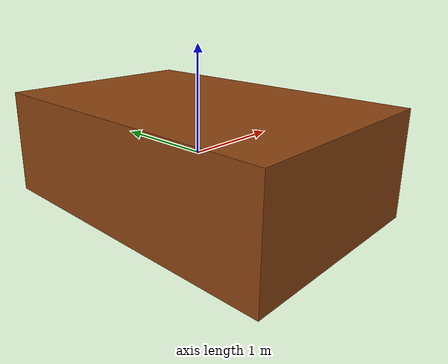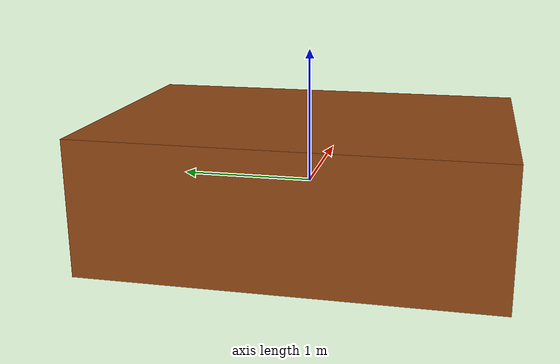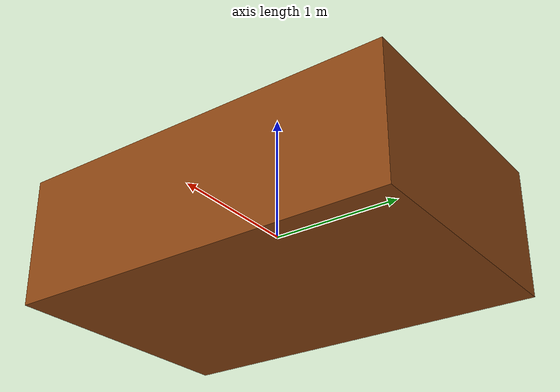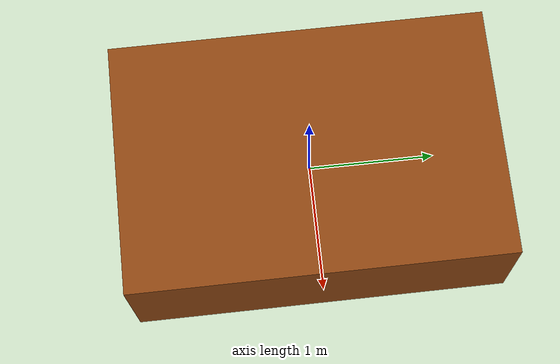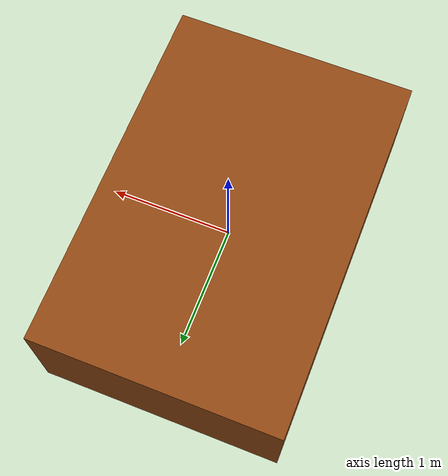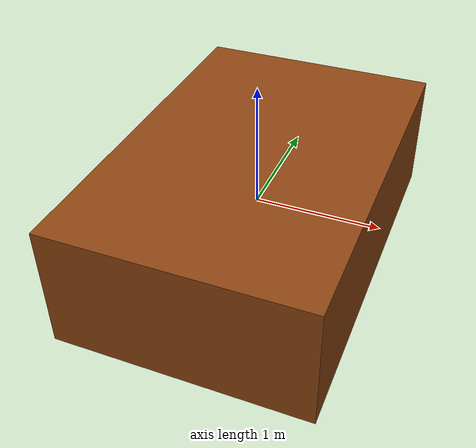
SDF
<?xml version="1.0" ?>
<!--
  Big Box Obstacle Model
  ==================
  Generic static parallelepiped obstacle.
  Default size: 2.0 × 3.0 × 1.0 m
-->
<sdf version="1.8">
  <model name="big_box_obstacle">
    <static>true</static>

    <link name="link">

      <inertial>
        <mass>1000</mass>
        <inertia>
          <ixx>1</ixx><ixy>0</ixy><ixz>0</ixz>
          <iyy>1</iyy><iyz>0</iyz>
          <izz>1</izz>
        </inertia>
      </inertial>

      <collision name="collision">
        <geometry>
          <box>
            <size>2.0 3.0 1.0</size>
          </box>
        </geometry>
        <surface>
          <contact><ode/></contact>
          <friction><ode><mu>100</mu><mu2>50</mu2></ode></friction>
        </surface>
      </collision>

      <visual name="visual">
        <geometry>
          <box>
            <size>2.0 3.0 1.0</size>
          </box>
        </geometry>
        <material>
          <!-- Brown-grey -->
          <ambient>0.55 0.27 0.07 1</ambient>
          <diffuse>0.55 0.27 0.07 1</diffuse>
          <specular>0.1 0.1 0.1 1</specular>
          <emissive>0 0 0 1</emissive>
        </material>
      </visual>

    </link>
  </model>
</sdf>
